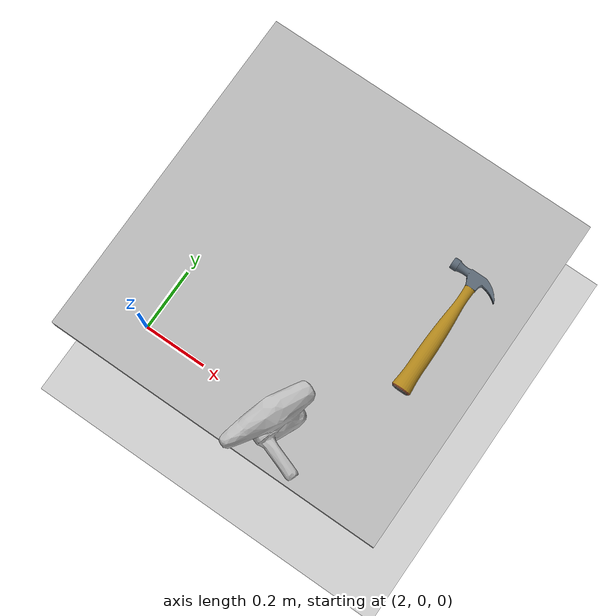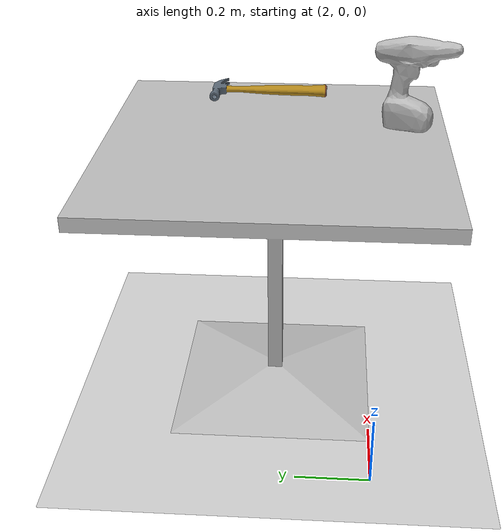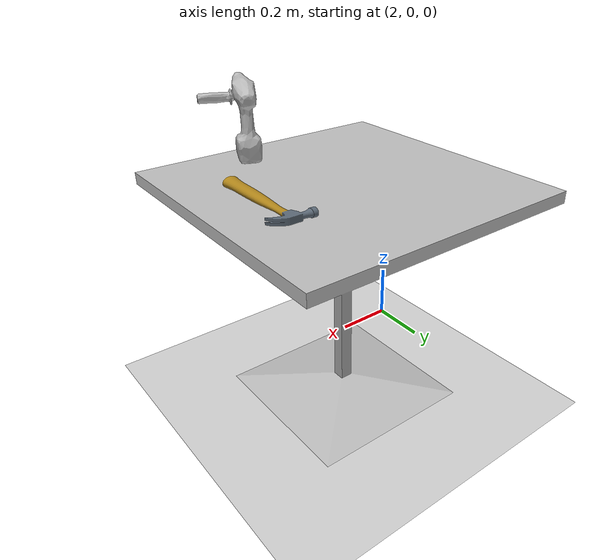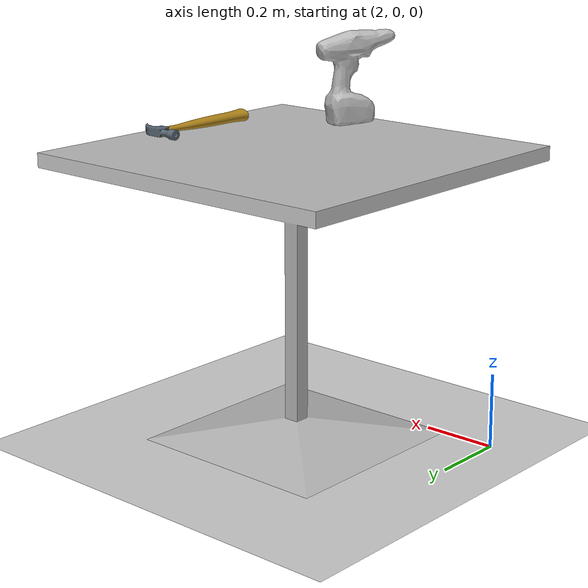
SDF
<sdf version="1.7">
 <world name="default">
  <physics type="ode">
   <max_step_size>0.001</max_step_size>
   <real_time_factor>1</real_time_factor>
   <real_time_update_rate>1000</real_time_update_rate>
  </physics>
  <light name="sun" type="directional">
   <pose>0 0 10 0 -0 0</pose>
   <diffuse>0.8 0.8 0.8 1</diffuse>
   <specular>0.2 0.2 0.2 1</specular>
   <attenuation>
    <range>1000</range>
    <constant>0.9</constant>
    <linear>0.01</linear>
    <quadratic>0.001</quadratic>
   </attenuation>
   <direction>-0.5 0.1 -0.9</direction>
   <spot><inner_angle>0</inner_angle><outer_angle>0</outer_angle><falloff>0</falloff></spot>
  </light>
  <model name="ground_plane">
   <static>1</static>
   <link name="link">
    <collision name="collision">
     <geometry><plane><normal>0 0 1</normal><size>100 100</size></plane></geometry>
     <surface>
      <contact><collide_bitmask>65535</collide_bitmask></contact>
      <friction><ode><mu>100</mu><mu2>50</mu2></ode></friction>
     </surface>
    </collision>
    <visual name="visual">
     <cast_shadows>0</cast_shadows>
     <geometry><plane><normal>0 0 1</normal><size>100 100</size></plane></geometry>
     <material>
      <script><uri>file://media/materials/scripts/gazebo.material</uri><name>Gazebo/Grey</name></script>
     </material>
    </visual>
   </link>
  </model>
  <gravity>0 0 -9.8</gravity>
  <magnetic_field>6e-06 2.3e-05 -4.2e-05</magnetic_field>
  <atmosphere type="adiabatic"/>
  <scene><ambient>0.4 0.4 0.4 1</ambient><background>0.7 0.7 0.7 1</background><shadows>1</shadows></scene>
  <spherical_coordinates>
   <surface_model>EARTH_WGS84</surface_model>
   <latitude_deg>0</latitude_deg>
   <longitude_deg>0</longitude_deg>
   <elevation>0</elevation>
   <heading_deg>0</heading_deg>
  </spherical_coordinates>
  <model name="cafe_table">
   <static>1</static>
   <link name="link">
    <collision name="surface">
     <pose>0 0 0.755 0 -0 0</pose>
     <geometry><box><size>0.913 0.913 0.04</size></box></geometry>
    </collision>
    <collision name="column">
     <pose>0 0 0.37 0 -0 0</pose>
     <geometry><box><size>0.042 0.042 0.74</size></box></geometry>
    </collision>
    <collision name="base">
     <pose>0 0 0.02 0 -0 0</pose>
     <geometry><box><size>0.56 0.56 0.04</size></box></geometry>
    </collision>
    <visual name="visual">
     <geometry><mesh><uri>model://cafe_table/meshes/cafe_table.dae</uri></mesh></geometry>
    </visual>
   </link>
   <pose>2.43046 0.276586 0 0 -0 0</pose>
  </model>
  <model name="drill">
   <link name="link">
    <inertial>
     <pose>-0.00637 -0.008 0.13254 0 -0 0</pose>
     <inertia>
      <ixx>0.0133113</ixx>
      <ixy>-0.00030365</ixy>
      <ixz>-0.00034148</ixz>
      <iyy>0.0115766</iyy>
      <iyz>0.00088073</iyz>
      <izz>0.00378028</izz>
     </inertia>
     <mass>1.50252</mass>
    </inertial>
    <collision name="collision">
     <pose>0 0 -0.09 0 -0 0</pose>
     <geometry><mesh><uri>model://cordless_drill/meshes/cordless_drill.stl</uri></mesh></geometry>
     <surface><contact><ode><max_vel>0.1</max_vel><min_depth>0.001</min_depth></ode></contact></surface>
    </collision>
    <visual name="visual">
     <pose>0 0 -0.09 0 -0 0</pose>
     <geometry><mesh><uri>model://cordless_drill/meshes/cordless_drill.dae</uri></mesh></geometry>
    </visual>
   </link>
   <pose>2.53741 -0.080942 0.772652 0.005935 -0.011493 2.7305</pose>
  </model>
  <model name="hammer">
   <static>1</static>
   <link name="link">
    <collision name="collision">
     <geometry><mesh><uri>model://hammer/meshes/hammer.dae</uri></mesh></geometry>
    </collision>
    <visual name="visual"><geometry><mesh><uri>model://hammer/meshes/hammer.dae</uri></mesh></geometry></visual>
   </link>
   <pose>2.72574 0.382902 0.807675 0 -0 0</pose>
  </model>
 </world>
</sdf>
